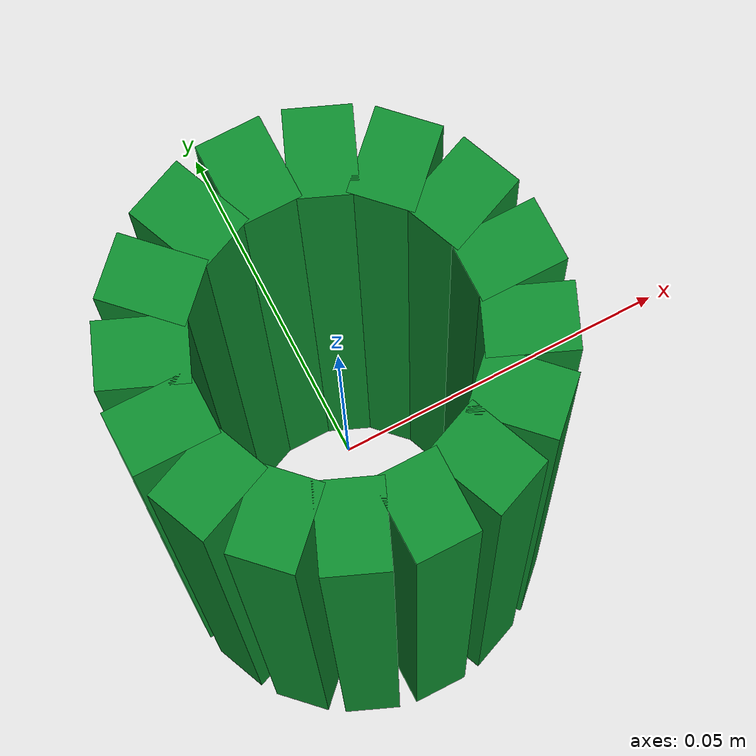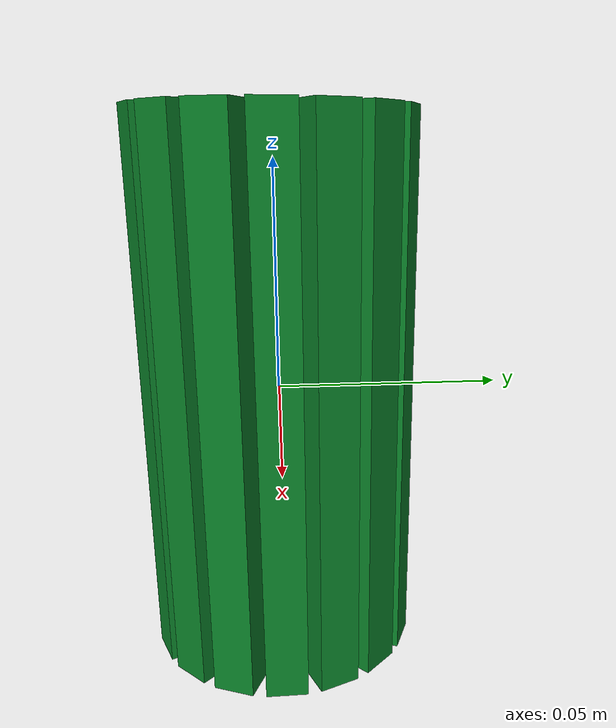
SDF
<?xml version="1.0"?>
<sdf version="1.6">
  <model name="hollow_cylinder">
    <static>false</static>
    <self_collide>false</self_collide>
    <!-- Let the settled held workpiece sleep; contact wakes it when R_ moves. -->
    <allow_auto_disable>true</allow_auto_disable>
    <link name="body">
      <inertial>
        <mass>0.18</mass>
        <inertia><ixx>0.0008</ixx><iyy>0.0008</iyy><izz>0.00035</izz><ixy>0</ixy><ixz>0</ixz><iyz>0</iyz></inertia>
      </inertial>
      <!-- Sixteen box segments approximate an annular wall with outer radius 0.030 m and inner radius 0.018 m. -->
      <collision name="collision_segment_00"><pose>0.0240 0 0 0 0 0</pose><geometry><box><size>0.012 0.009 0.12</size></box></geometry><surface><friction><ode><mu>1.5</mu><mu2>1.5</mu2><slip1>0.0</slip1><slip2>0.0</slip2></ode></friction></surface></collision>
      <visual name="visual_segment_00"><pose>0.0240 0 0 0 0 0</pose><geometry><box><size>0.012 0.009 0.12</size></box></geometry><material><ambient>0.05 0.35 0.12 1</ambient><diffuse>0.05 0.55 0.18 1</diffuse></material></visual>
      <collision name="collision_segment_01"><pose>0.0222 0.0092 0 0 0 0.3927</pose><geometry><box><size>0.012 0.009 0.12</size></box></geometry><surface><friction><ode><mu>1.5</mu><mu2>1.5</mu2><slip1>0.0</slip1><slip2>0.0</slip2></ode></friction></surface></collision>
      <visual name="visual_segment_01"><pose>0.0222 0.0092 0 0 0 0.3927</pose><geometry><box><size>0.012 0.009 0.12</size></box></geometry><material><ambient>0.05 0.35 0.12 1</ambient><diffuse>0.05 0.55 0.18 1</diffuse></material></visual>
      <collision name="collision_segment_02"><pose>0.0170 0.0170 0 0 0 0.7854</pose><geometry><box><size>0.012 0.009 0.12</size></box></geometry><surface><friction><ode><mu>1.5</mu><mu2>1.5</mu2><slip1>0.0</slip1><slip2>0.0</slip2></ode></friction></surface></collision>
      <visual name="visual_segment_02"><pose>0.0170 0.0170 0 0 0 0.7854</pose><geometry><box><size>0.012 0.009 0.12</size></box></geometry><material><ambient>0.05 0.35 0.12 1</ambient><diffuse>0.05 0.55 0.18 1</diffuse></material></visual>
      <collision name="collision_segment_03"><pose>0.0092 0.0222 0 0 0 1.1781</pose><geometry><box><size>0.012 0.009 0.12</size></box></geometry><surface><friction><ode><mu>1.5</mu><mu2>1.5</mu2><slip1>0.0</slip1><slip2>0.0</slip2></ode></friction></surface></collision>
      <visual name="visual_segment_03"><pose>0.0092 0.0222 0 0 0 1.1781</pose><geometry><box><size>0.012 0.009 0.12</size></box></geometry><material><ambient>0.05 0.35 0.12 1</ambient><diffuse>0.05 0.55 0.18 1</diffuse></material></visual>
      <collision name="collision_segment_04"><pose>0 0.0240 0 0 0 1.5708</pose><geometry><box><size>0.012 0.009 0.12</size></box></geometry><surface><friction><ode><mu>1.5</mu><mu2>1.5</mu2><slip1>0.0</slip1><slip2>0.0</slip2></ode></friction></surface></collision>
      <visual name="visual_segment_04"><pose>0 0.0240 0 0 0 1.5708</pose><geometry><box><size>0.012 0.009 0.12</size></box></geometry><material><ambient>0.05 0.35 0.12 1</ambient><diffuse>0.05 0.55 0.18 1</diffuse></material></visual>
      <collision name="collision_segment_05"><pose>-0.0092 0.0222 0 0 0 1.9635</pose><geometry><box><size>0.012 0.009 0.12</size></box></geometry><surface><friction><ode><mu>1.5</mu><mu2>1.5</mu2><slip1>0.0</slip1><slip2>0.0</slip2></ode></friction></surface></collision>
      <visual name="visual_segment_05"><pose>-0.0092 0.0222 0 0 0 1.9635</pose><geometry><box><size>0.012 0.009 0.12</size></box></geometry><material><ambient>0.05 0.35 0.12 1</ambient><diffuse>0.05 0.55 0.18 1</diffuse></material></visual>
      <collision name="collision_segment_06"><pose>-0.0170 0.0170 0 0 0 2.3562</pose><geometry><box><size>0.012 0.009 0.12</size></box></geometry><surface><friction><ode><mu>1.5</mu><mu2>1.5</mu2><slip1>0.0</slip1><slip2>0.0</slip2></ode></friction></surface></collision>
      <visual name="visual_segment_06"><pose>-0.0170 0.0170 0 0 0 2.3562</pose><geometry><box><size>0.012 0.009 0.12</size></box></geometry><material><ambient>0.05 0.35 0.12 1</ambient><diffuse>0.05 0.55 0.18 1</diffuse></material></visual>
      <collision name="collision_segment_07"><pose>-0.0222 0.0092 0 0 0 2.7489</pose><geometry><box><size>0.012 0.009 0.12</size></box></geometry><surface><friction><ode><mu>1.5</mu><mu2>1.5</mu2><slip1>0.0</slip1><slip2>0.0</slip2></ode></friction></surface></collision>
      <visual name="visual_segment_07"><pose>-0.0222 0.0092 0 0 0 2.7489</pose><geometry><box><size>0.012 0.009 0.12</size></box></geometry><material><ambient>0.05 0.35 0.12 1</ambient><diffuse>0.05 0.55 0.18 1</diffuse></material></visual>
      <collision name="collision_segment_08"><pose>-0.0240 0 0 0 0 3.1416</pose><geometry><box><size>0.012 0.009 0.12</size></box></geometry><surface><friction><ode><mu>1.5</mu><mu2>1.5</mu2><slip1>0.0</slip1><slip2>0.0</slip2></ode></friction></surface></collision>
      <visual name="visual_segment_08"><pose>-0.0240 0 0 0 0 3.1416</pose><geometry><box><size>0.012 0.009 0.12</size></box></geometry><material><ambient>0.05 0.35 0.12 1</ambient><diffuse>0.05 0.55 0.18 1</diffuse></material></visual>
      <collision name="collision_segment_09"><pose>-0.0222 -0.0092 0 0 0 3.5343</pose><geometry><box><size>0.012 0.009 0.12</size></box></geometry><surface><friction><ode><mu>1.5</mu><mu2>1.5</mu2><slip1>0.0</slip1><slip2>0.0</slip2></ode></friction></surface></collision>
      <visual name="visual_segment_09"><pose>-0.0222 -0.0092 0 0 0 3.5343</pose><geometry><box><size>0.012 0.009 0.12</size></box></geometry><material><ambient>0.05 0.35 0.12 1</ambient><diffuse>0.05 0.55 0.18 1</diffuse></material></visual>
      <collision name="collision_segment_10"><pose>-0.0170 -0.0170 0 0 0 3.9270</pose><geometry><box><size>0.012 0.009 0.12</size></box></geometry><surface><friction><ode><mu>1.5</mu><mu2>1.5</mu2><slip1>0.0</slip1><slip2>0.0</slip2></ode></friction></surface></collision>
      <visual name="visual_segment_10"><pose>-0.0170 -0.0170 0 0 0 3.9270</pose><geometry><box><size>0.012 0.009 0.12</size></box></geometry><material><ambient>0.05 0.35 0.12 1</ambient><diffuse>0.05 0.55 0.18 1</diffuse></material></visual>
      <collision name="collision_segment_11"><pose>-0.0092 -0.0222 0 0 0 4.3197</pose><geometry><box><size>0.012 0.009 0.12</size></box></geometry><surface><friction><ode><mu>1.5</mu><mu2>1.5</mu2><slip1>0.0</slip1><slip2>0.0</slip2></ode></friction></surface></collision>
      <visual name="visual_segment_11"><pose>-0.0092 -0.0222 0 0 0 4.3197</pose><geometry><box><size>0.012 0.009 0.12</size></box></geometry><material><ambient>0.05 0.35 0.12 1</ambient><diffuse>0.05 0.55 0.18 1</diffuse></material></visual>
      <collision name="collision_segment_12"><pose>0 -0.0240 0 0 0 4.7124</pose><geometry><box><size>0.012 0.009 0.12</size></box></geometry><surface><friction><ode><mu>1.5</mu><mu2>1.5</mu2><slip1>0.0</slip1><slip2>0.0</slip2></ode></friction></surface></collision>
      <visual name="visual_segment_12"><pose>0 -0.0240 0 0 0 4.7124</pose><geometry><box><size>0.012 0.009 0.12</size></box></geometry><material><ambient>0.05 0.35 0.12 1</ambient><diffuse>0.05 0.55 0.18 1</diffuse></material></visual>
      <collision name="collision_segment_13"><pose>0.0092 -0.0222 0 0 0 5.1051</pose><geometry><box><size>0.012 0.009 0.12</size></box></geometry><surface><friction><ode><mu>1.5</mu><mu2>1.5</mu2><slip1>0.0</slip1><slip2>0.0</slip2></ode></friction></surface></collision>
      <visual name="visual_segment_13"><pose>0.0092 -0.0222 0 0 0 5.1051</pose><geometry><box><size>0.012 0.009 0.12</size></box></geometry><material><ambient>0.05 0.35 0.12 1</ambient><diffuse>0.05 0.55 0.18 1</diffuse></material></visual>
      <collision name="collision_segment_14"><pose>0.0170 -0.0170 0 0 0 5.4978</pose><geometry><box><size>0.012 0.009 0.12</size></box></geometry><surface><friction><ode><mu>1.5</mu><mu2>1.5</mu2><slip1>0.0</slip1><slip2>0.0</slip2></ode></friction></surface></collision>
      <visual name="visual_segment_14"><pose>0.0170 -0.0170 0 0 0 5.4978</pose><geometry><box><size>0.012 0.009 0.12</size></box></geometry><material><ambient>0.05 0.35 0.12 1</ambient><diffuse>0.05 0.55 0.18 1</diffuse></material></visual>
      <collision name="collision_segment_15"><pose>0.0222 -0.0092 0 0 0 5.8905</pose><geometry><box><size>0.012 0.009 0.12</size></box></geometry><surface><friction><ode><mu>1.5</mu><mu2>1.5</mu2><slip1>0.0</slip1><slip2>0.0</slip2></ode></friction></surface></collision>
      <visual name="visual_segment_15"><pose>0.0222 -0.0092 0 0 0 5.8905</pose><geometry><box><size>0.012 0.009 0.12</size></box></geometry><material><ambient>0.05 0.35 0.12 1</ambient><diffuse>0.05 0.55 0.18 1</diffuse></material></visual>
    </link>
  </model>
</sdf>
